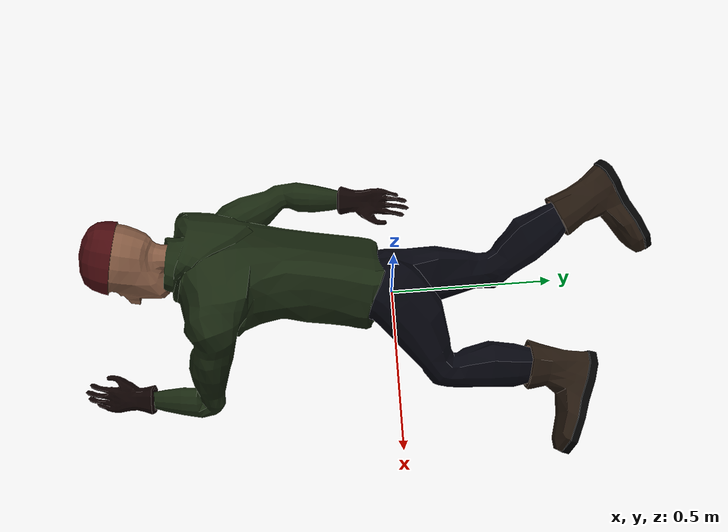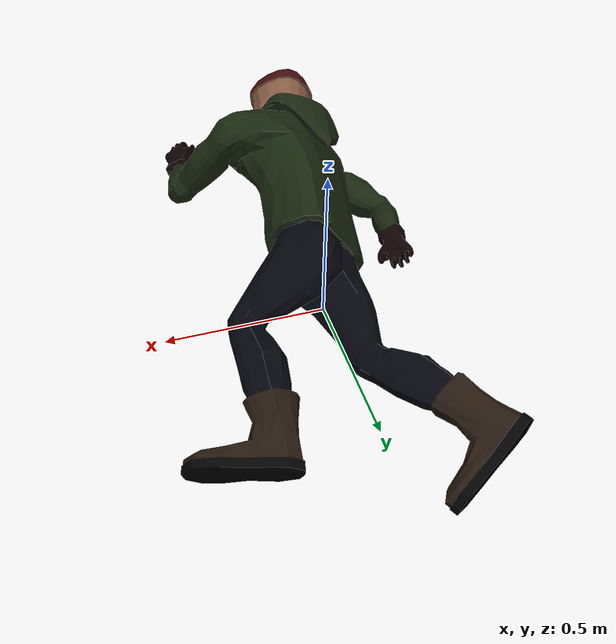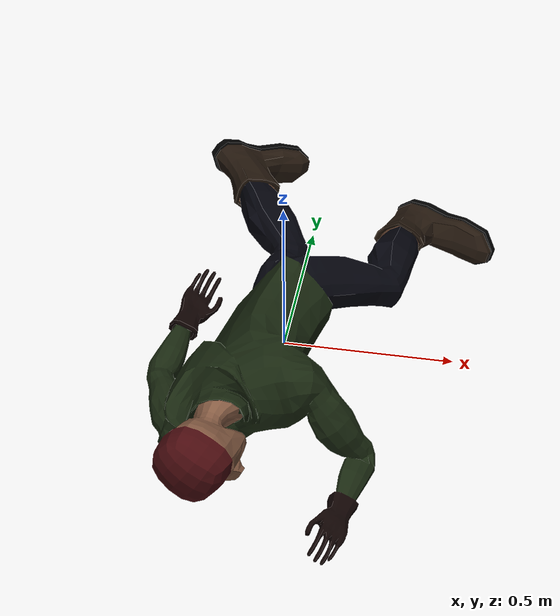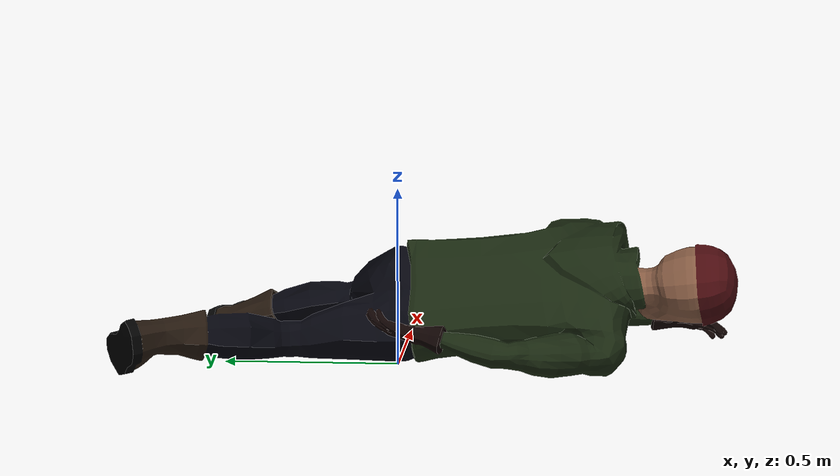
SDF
<?xml version="1.0" ?>

<sdf version="1.4">
  <model name="avalanche_victim">
    <static>true</static>
    <link name="avalanche_victim">
      <collision name="collision">
	<geometry>
            <mesh>
	      <uri>model://avalanche_victim/victim.dae</uri>
	    </mesh>
          </geometry>
      </collision>
      <visual name="vis">
        <cast_shadows>false</cast_shadows>

	<geometry>
            <mesh>
	      <uri>model://avalanche_victim/victim.dae</uri>
	    </mesh>
          </geometry>
      </visual>

    </link>
          <plugin name="scanable"
              filename="libiai_object_transmitter.so">
            <object_type>victim</object_type><!-- this is used to determine -->
            <absolute_detection>false</absolute_detection>
            <attribute key="otype" value="victim"/>
            <attribute key="manmade" value="true"/>
            <attribute key="navigation" value="inner"/>
      </plugin>
  </model>
</sdf>
